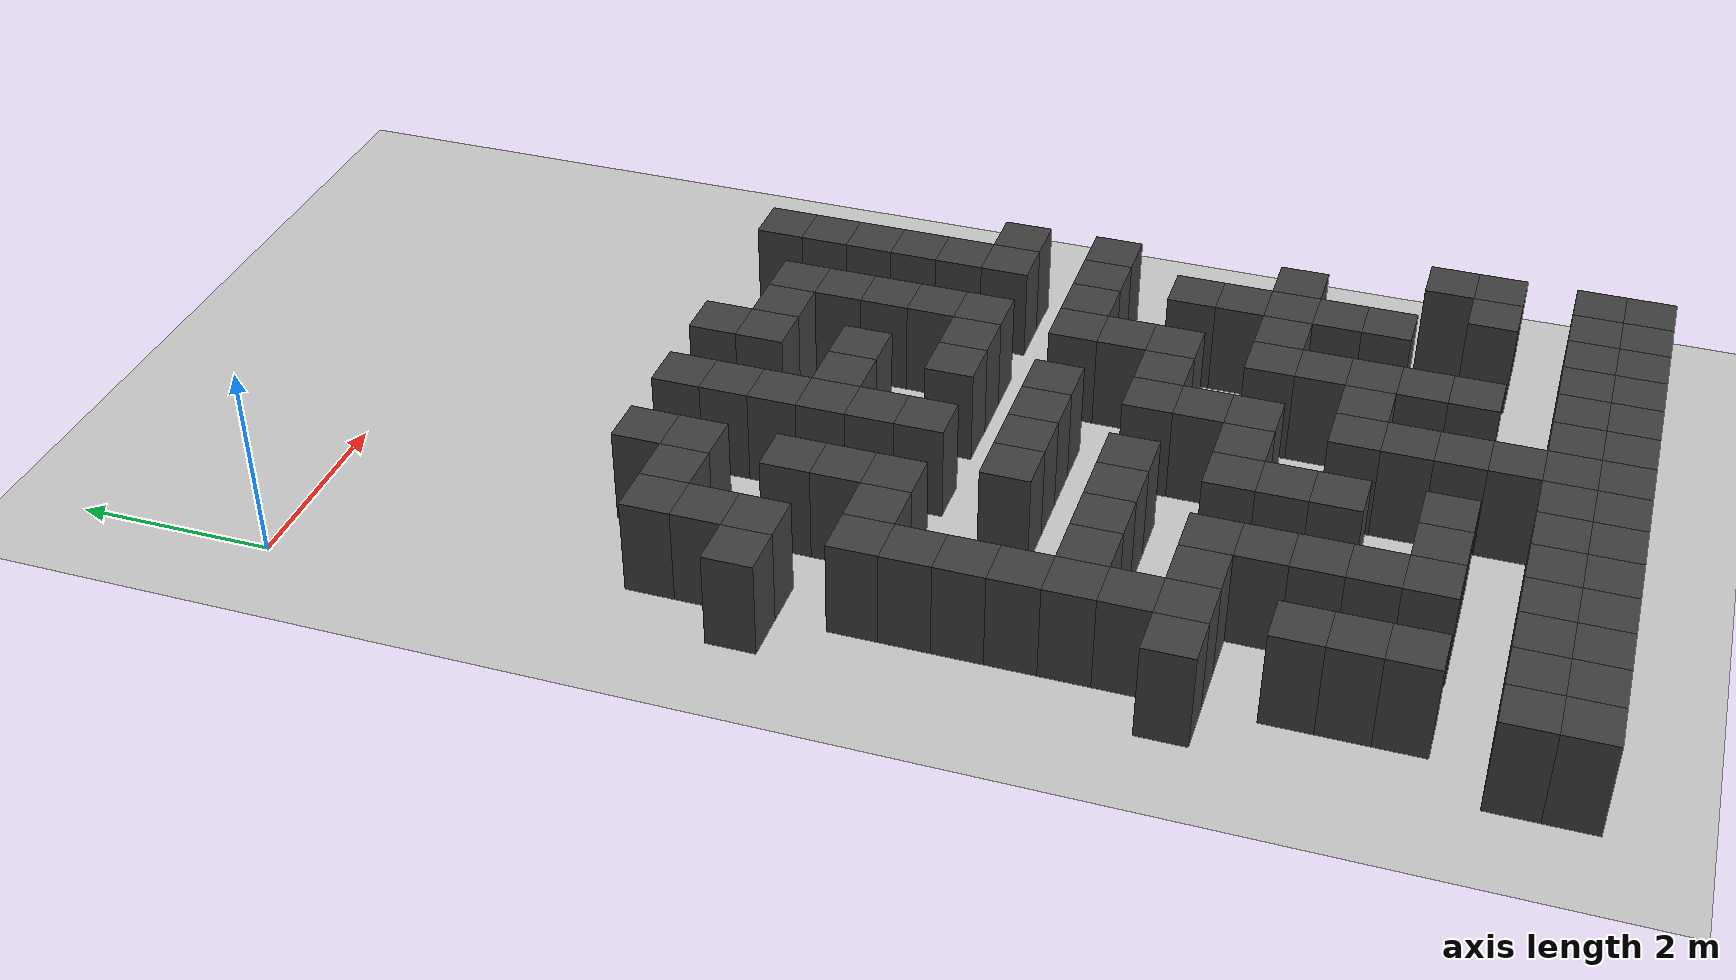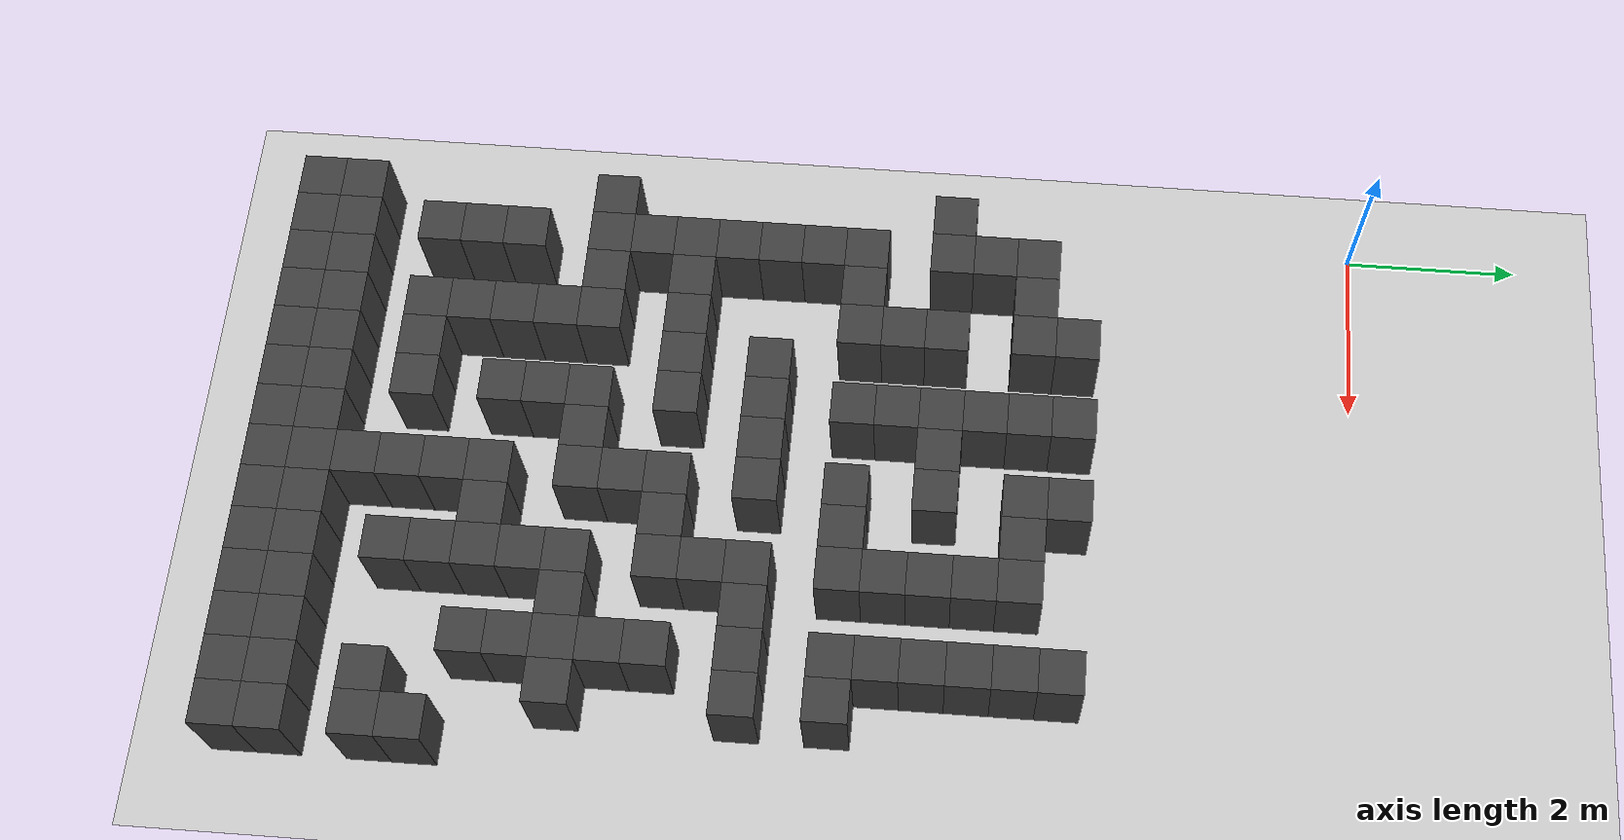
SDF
<sdf version="1.7">
 <world name="map_16783">
  <model name="ground_plane">
   <static>true</static>
   <link name="link">
    <collision name="collision">
     <geometry><plane><normal>0 0 1</normal><size>200 200</size></plane></geometry>
    </collision>
    <visual name="visual">
     <geometry><plane><normal>0 0 1</normal><size>200 200</size></plane></geometry>
     <material><ambient>0.8 0.8 0.8 1</ambient><diffuse>0.8 0.8 0.8 1</diffuse></material>
    </visual>
   </link>
  </model>
  <model name="maze_environment">
   <static>true</static>
   <link name="wall_761">
    <pose>1.750 -3.250 0.500 0 0 0</pose>
    <collision name="col"><geometry><box><size>0.5 0.5 1.0</size></box></geometry></collision>
    <visual name="vis">
     <geometry><box><size>0.5 0.5 1.0</size></box></geometry>
     <material><ambient>0.15 0.15 0.15 1</ambient><diffuse>0.25 0.25 0.25 1</diffuse></material>
    </visual>
   </link>
   <link name="wall_762">
    <pose>2.750 -3.250 0.500 0 0 0</pose>
    <collision name="col"><geometry><box><size>0.5 0.5 1.0</size></box></geometry></collision>
    <visual name="vis">
     <geometry><box><size>0.5 0.5 1.0</size></box></geometry>
     <material><ambient>0.15 0.15 0.15 1</ambient><diffuse>0.25 0.25 0.25 1</diffuse></material>
    </visual>
   </link>
   <link name="wall_763">
    <pose>3.750 -3.250 0.500 0 0 0</pose>
    <collision name="col"><geometry><box><size>0.5 0.5 1.0</size></box></geometry></collision>
    <visual name="vis">
     <geometry><box><size>0.5 0.5 1.0</size></box></geometry>
     <material><ambient>0.15 0.15 0.15 1</ambient><diffuse>0.25 0.25 0.25 1</diffuse></material>
    </visual>
   </link>
   <link name="wall_764">
    <pose>5.750 -3.250 0.500 0 0 0</pose>
    <collision name="col"><geometry><box><size>0.5 0.5 1.0</size></box></geometry></collision>
    <visual name="vis">
     <geometry><box><size>0.5 0.5 1.0</size></box></geometry>
     <material><ambient>0.15 0.15 0.15 1</ambient><diffuse>0.25 0.25 0.25 1</diffuse></material>
    </visual>
   </link>
   <link name="wall_786">
    <pose>0.750 -3.750 0.500 0 0 0</pose>
    <collision name="col"><geometry><box><size>0.5 0.5 1.0</size></box></geometry></collision>
    <visual name="vis">
     <geometry><box><size>0.5 0.5 1.0</size></box></geometry>
     <material><ambient>0.15 0.15 0.15 1</ambient><diffuse>0.25 0.25 0.25 1</diffuse></material>
    </visual>
   </link>
   <link name="wall_787">
    <pose>1.250 -3.750 0.500 0 0 0</pose>
    <collision name="col"><geometry><box><size>0.5 0.5 1.0</size></box></geometry></collision>
    <visual name="vis">
     <geometry><box><size>0.5 0.5 1.0</size></box></geometry>
     <material><ambient>0.15 0.15 0.15 1</ambient><diffuse>0.25 0.25 0.25 1</diffuse></material>
    </visual>
   </link>
   <link name="wall_788">
    <pose>1.750 -3.750 0.500 0 0 0</pose>
    <collision name="col"><geometry><box><size>0.5 0.5 1.0</size></box></geometry></collision>
    <visual name="vis">
     <geometry><box><size>0.5 0.5 1.0</size></box></geometry>
     <material><ambient>0.15 0.15 0.15 1</ambient><diffuse>0.25 0.25 0.25 1</diffuse></material>
    </visual>
   </link>
   <link name="wall_789">
    <pose>2.750 -3.750 0.500 0 0 0</pose>
    <collision name="col"><geometry><box><size>0.5 0.5 1.0</size></box></geometry></collision>
    <visual name="vis">
     <geometry><box><size>0.5 0.5 1.0</size></box></geometry>
     <material><ambient>0.15 0.15 0.15 1</ambient><diffuse>0.25 0.25 0.25 1</diffuse></material>
    </visual>
   </link>
   <link name="wall_790">
    <pose>3.750 -3.750 0.500 0 0 0</pose>
    <collision name="col"><geometry><box><size>0.5 0.5 1.0</size></box></geometry></collision>
    <visual name="vis">
     <geometry><box><size>0.5 0.5 1.0</size></box></geometry>
     <material><ambient>0.15 0.15 0.15 1</ambient><diffuse>0.25 0.25 0.25 1</diffuse></material>
    </visual>
   </link>
   <link name="wall_791">
    <pose>4.250 -3.750 0.500 0 0 0</pose>
    <collision name="col"><geometry><box><size>0.5 0.5 1.0</size></box></geometry></collision>
    <visual name="vis">
     <geometry><box><size>0.5 0.5 1.0</size></box></geometry>
     <material><ambient>0.15 0.15 0.15 1</ambient><diffuse>0.25 0.25 0.25 1</diffuse></material>
    </visual>
   </link>
   <link name="wall_792">
    <pose>4.750 -3.750 0.500 0 0 0</pose>
    <collision name="col"><geometry><box><size>0.5 0.5 1.0</size></box></geometry></collision>
    <visual name="vis">
     <geometry><box><size>0.5 0.5 1.0</size></box></geometry>
     <material><ambient>0.15 0.15 0.15 1</ambient><diffuse>0.25 0.25 0.25 1</diffuse></material>
    </visual>
   </link>
   <link name="wall_793">
    <pose>5.750 -3.750 0.500 0 0 0</pose>
    <collision name="col"><geometry><box><size>0.5 0.5 1.0</size></box></geometry></collision>
    <visual name="vis">
     <geometry><box><size>0.5 0.5 1.0</size></box></geometry>
     <material><ambient>0.15 0.15 0.15 1</ambient><diffuse>0.25 0.25 0.25 1</diffuse></material>
    </visual>
   </link>
   <link name="wall_808">
    <pose>0.750 -4.250 0.500 0 0 0</pose>
    <collision name="col"><geometry><box><size>0.5 0.5 1.0</size></box></geometry></collision>
    <visual name="vis">
     <geometry><box><size>0.5 0.5 1.0</size></box></geometry>
     <material><ambient>0.15 0.15 0.15 1</ambient><diffuse>0.25 0.25 0.25 1</diffuse></material>
    </visual>
   </link>
   <link name="wall_809">
    <pose>2.750 -4.250 0.500 0 0 0</pose>
    <collision name="col"><geometry><box><size>0.5 0.5 1.0</size></box></geometry></collision>
    <visual name="vis">
     <geometry><box><size>0.5 0.5 1.0</size></box></geometry>
     <material><ambient>0.15 0.15 0.15 1</ambient><diffuse>0.25 0.25 0.25 1</diffuse></material>
    </visual>
   </link>
   <link name="wall_810">
    <pose>4.750 -4.250 0.500 0 0 0</pose>
    <collision name="col"><geometry><box><size>0.5 0.5 1.0</size></box></geometry></collision>
    <visual name="vis">
     <geometry><box><size>0.5 0.5 1.0</size></box></geometry>
     <material><ambient>0.15 0.15 0.15 1</ambient><diffuse>0.25 0.25 0.25 1</diffuse></material>
    </visual>
   </link>
   <link name="wall_811">
    <pose>5.750 -4.250 0.500 0 0 0</pose>
    <collision name="col"><geometry><box><size>0.5 0.5 1.0</size></box></geometry></collision>
    <visual name="vis">
     <geometry><box><size>0.5 0.5 1.0</size></box></geometry>
     <material><ambient>0.15 0.15 0.15 1</ambient><diffuse>0.25 0.25 0.25 1</diffuse></material>
    </visual>
   </link>
   <link name="wall_834">
    <pose>0.250 -4.750 0.500 0 0 0</pose>
    <collision name="col"><geometry><box><size>0.5 0.5 1.0</size></box></geometry></collision>
    <visual name="vis">
     <geometry><box><size>0.5 0.5 1.0</size></box></geometry>
     <material><ambient>0.15 0.15 0.15 1</ambient><diffuse>0.25 0.25 0.25 1</diffuse></material>
    </visual>
   </link>
   <link name="wall_835">
    <pose>0.750 -4.750 0.500 0 0 0</pose>
    <collision name="col"><geometry><box><size>0.5 0.5 1.0</size></box></geometry></collision>
    <visual name="vis">
     <geometry><box><size>0.5 0.5 1.0</size></box></geometry>
     <material><ambient>0.15 0.15 0.15 1</ambient><diffuse>0.25 0.25 0.25 1</diffuse></material>
    </visual>
   </link>
   <link name="wall_836">
    <pose>1.750 -4.750 0.500 0 0 0</pose>
    <collision name="col"><geometry><box><size>0.5 0.5 1.0</size></box></geometry></collision>
    <visual name="vis">
     <geometry><box><size>0.5 0.5 1.0</size></box></geometry>
     <material><ambient>0.15 0.15 0.15 1</ambient><diffuse>0.25 0.25 0.25 1</diffuse></material>
    </visual>
   </link>
   <link name="wall_837">
    <pose>2.750 -4.750 0.500 0 0 0</pose>
    <collision name="col"><geometry><box><size>0.5 0.5 1.0</size></box></geometry></collision>
    <visual name="vis">
     <geometry><box><size>0.5 0.5 1.0</size></box></geometry>
     <material><ambient>0.15 0.15 0.15 1</ambient><diffuse>0.25 0.25 0.25 1</diffuse></material>
    </visual>
   </link>
   <link name="wall_838">
    <pose>3.250 -4.750 0.500 0 0 0</pose>
    <collision name="col"><geometry><box><size>0.5 0.5 1.0</size></box></geometry></collision>
    <visual name="vis">
     <geometry><box><size>0.5 0.5 1.0</size></box></geometry>
     <material><ambient>0.15 0.15 0.15 1</ambient><diffuse>0.25 0.25 0.25 1</diffuse></material>
    </visual>
   </link>
   <link name="wall_839">
    <pose>3.750 -4.750 0.500 0 0 0</pose>
    <collision name="col"><geometry><box><size>0.5 0.5 1.0</size></box></geometry></collision>
    <visual name="vis">
     <geometry><box><size>0.5 0.5 1.0</size></box></geometry>
     <material><ambient>0.15 0.15 0.15 1</ambient><diffuse>0.25 0.25 0.25 1</diffuse></material>
    </visual>
   </link>
   <link name="wall_840">
    <pose>4.750 -4.750 0.500 0 0 0</pose>
    <collision name="col"><geometry><box><size>0.5 0.5 1.0</size></box></geometry></collision>
    <visual name="vis">
     <geometry><box><size>0.5 0.5 1.0</size></box></geometry>
     <material><ambient>0.15 0.15 0.15 1</ambient><diffuse>0.25 0.25 0.25 1</diffuse></material>
    </visual>
   </link>
   <link name="wall_841">
    <pose>5.750 -4.750 0.500 0 0 0</pose>
    <collision name="col"><geometry><box><size>0.5 0.5 1.0</size></box></geometry></collision>
    <visual name="vis">
     <geometry><box><size>0.5 0.5 1.0</size></box></geometry>
     <material><ambient>0.15 0.15 0.15 1</ambient><diffuse>0.25 0.25 0.25 1</diffuse></material>
    </visual>
   </link>
   <link name="wall_857">
    <pose>1.750 -5.250 0.500 0 0 0</pose>
    <collision name="col"><geometry><box><size>0.5 0.5 1.0</size></box></geometry></collision>
    <visual name="vis">
     <geometry><box><size>0.5 0.5 1.0</size></box></geometry>
     <material><ambient>0.15 0.15 0.15 1</ambient><diffuse>0.25 0.25 0.25 1</diffuse></material>
    </visual>
   </link>
   <link name="wall_858">
    <pose>2.750 -5.250 0.500 0 0 0</pose>
    <collision name="col"><geometry><box><size>0.5 0.5 1.0</size></box></geometry></collision>
    <visual name="vis">
     <geometry><box><size>0.5 0.5 1.0</size></box></geometry>
     <material><ambient>0.15 0.15 0.15 1</ambient><diffuse>0.25 0.25 0.25 1</diffuse></material>
    </visual>
   </link>
   <link name="wall_859">
    <pose>4.750 -5.250 0.500 0 0 0</pose>
    <collision name="col"><geometry><box><size>0.5 0.5 1.0</size></box></geometry></collision>
    <visual name="vis">
     <geometry><box><size>0.5 0.5 1.0</size></box></geometry>
     <material><ambient>0.15 0.15 0.15 1</ambient><diffuse>0.25 0.25 0.25 1</diffuse></material>
    </visual>
   </link>
   <link name="wall_860">
    <pose>5.750 -5.250 0.500 0 0 0</pose>
    <collision name="col"><geometry><box><size>0.5 0.5 1.0</size></box></geometry></collision>
    <visual name="vis">
     <geometry><box><size>0.5 0.5 1.0</size></box></geometry>
     <material><ambient>0.15 0.15 0.15 1</ambient><diffuse>0.25 0.25 0.25 1</diffuse></material>
    </visual>
   </link>
   <link name="wall_880">
    <pose>0.750 -5.750 0.500 0 0 0</pose>
    <collision name="col"><geometry><box><size>0.5 0.5 1.0</size></box></geometry></collision>
    <visual name="vis">
     <geometry><box><size>0.5 0.5 1.0</size></box></geometry>
     <material><ambient>0.15 0.15 0.15 1</ambient><diffuse>0.25 0.25 0.25 1</diffuse></material>
    </visual>
   </link>
   <link name="wall_881">
    <pose>1.250 -5.750 0.500 0 0 0</pose>
    <collision name="col"><geometry><box><size>0.5 0.5 1.0</size></box></geometry></collision>
    <visual name="vis">
     <geometry><box><size>0.5 0.5 1.0</size></box></geometry>
     <material><ambient>0.15 0.15 0.15 1</ambient><diffuse>0.25 0.25 0.25 1</diffuse></material>
    </visual>
   </link>
   <link name="wall_882">
    <pose>1.750 -5.750 0.500 0 0 0</pose>
    <collision name="col"><geometry><box><size>0.5 0.5 1.0</size></box></geometry></collision>
    <visual name="vis">
     <geometry><box><size>0.5 0.5 1.0</size></box></geometry>
     <material><ambient>0.15 0.15 0.15 1</ambient><diffuse>0.25 0.25 0.25 1</diffuse></material>
    </visual>
   </link>
   <link name="wall_883">
    <pose>2.750 -5.750 0.500 0 0 0</pose>
    <collision name="col"><geometry><box><size>0.5 0.5 1.0</size></box></geometry></collision>
    <visual name="vis">
     <geometry><box><size>0.5 0.5 1.0</size></box></geometry>
     <material><ambient>0.15 0.15 0.15 1</ambient><diffuse>0.25 0.25 0.25 1</diffuse></material>
    </visual>
   </link>
   <link name="wall_884">
    <pose>3.750 -5.750 0.500 0 0 0</pose>
    <collision name="col"><geometry><box><size>0.5 0.5 1.0</size></box></geometry></collision>
    <visual name="vis">
     <geometry><box><size>0.5 0.5 1.0</size></box></geometry>
     <material><ambient>0.15 0.15 0.15 1</ambient><diffuse>0.25 0.25 0.25 1</diffuse></material>
    </visual>
   </link>
   <link name="wall_885">
    <pose>4.250 -5.750 0.500 0 0 0</pose>
    <collision name="col"><geometry><box><size>0.5 0.5 1.0</size></box></geometry></collision>
    <visual name="vis">
     <geometry><box><size>0.5 0.5 1.0</size></box></geometry>
     <material><ambient>0.15 0.15 0.15 1</ambient><diffuse>0.25 0.25 0.25 1</diffuse></material>
    </visual>
   </link>
   <link name="wall_886">
    <pose>4.750 -5.750 0.500 0 0 0</pose>
    <collision name="col"><geometry><box><size>0.5 0.5 1.0</size></box></geometry></collision>
    <visual name="vis">
     <geometry><box><size>0.5 0.5 1.0</size></box></geometry>
     <material><ambient>0.15 0.15 0.15 1</ambient><diffuse>0.25 0.25 0.25 1</diffuse></material>
    </visual>
   </link>
   <link name="wall_887">
    <pose>5.750 -5.750 0.500 0 0 0</pose>
    <collision name="col"><geometry><box><size>0.5 0.5 1.0</size></box></geometry></collision>
    <visual name="vis">
     <geometry><box><size>0.5 0.5 1.0</size></box></geometry>
     <material><ambient>0.15 0.15 0.15 1</ambient><diffuse>0.25 0.25 0.25 1</diffuse></material>
    </visual>
   </link>
   <link name="wall_888">
    <pose>6.250 -5.750 0.500 0 0 0</pose>
    <collision name="col"><geometry><box><size>0.5 0.5 1.0</size></box></geometry></collision>
    <visual name="vis">
     <geometry><box><size>0.5 0.5 1.0</size></box></geometry>
     <material><ambient>0.15 0.15 0.15 1</ambient><diffuse>0.25 0.25 0.25 1</diffuse></material>
    </visual>
   </link>
   <link name="wall_908">
    <pose>0.750 -6.250 0.500 0 0 0</pose>
    <collision name="col"><geometry><box><size>0.5 0.5 1.0</size></box></geometry></collision>
    <visual name="vis">
     <geometry><box><size>0.5 0.5 1.0</size></box></geometry>
     <material><ambient>0.15 0.15 0.15 1</ambient><diffuse>0.25 0.25 0.25 1</diffuse></material>
    </visual>
   </link>
   <link name="wall_927">
    <pose>0.750 -6.750 0.500 0 0 0</pose>
    <collision name="col"><geometry><box><size>0.5 0.5 1.0</size></box></geometry></collision>
    <visual name="vis">
     <geometry><box><size>0.5 0.5 1.0</size></box></geometry>
     <material><ambient>0.15 0.15 0.15 1</ambient><diffuse>0.25 0.25 0.25 1</diffuse></material>
    </visual>
   </link>
   <link name="wall_928">
    <pose>2.250 -6.750 0.500 0 0 0</pose>
    <collision name="col"><geometry><box><size>0.5 0.5 1.0</size></box></geometry></collision>
    <visual name="vis">
     <geometry><box><size>0.5 0.5 1.0</size></box></geometry>
     <material><ambient>0.15 0.15 0.15 1</ambient><diffuse>0.25 0.25 0.25 1</diffuse></material>
    </visual>
   </link>
   <link name="wall_929">
    <pose>2.750 -6.750 0.500 0 0 0</pose>
    <collision name="col"><geometry><box><size>0.5 0.5 1.0</size></box></geometry></collision>
    <visual name="vis">
     <geometry><box><size>0.5 0.5 1.0</size></box></geometry>
     <material><ambient>0.15 0.15 0.15 1</ambient><diffuse>0.25 0.25 0.25 1</diffuse></material>
    </visual>
   </link>
   <link name="wall_930">
    <pose>3.250 -6.750 0.500 0 0 0</pose>
    <collision name="col"><geometry><box><size>0.5 0.5 1.0</size></box></geometry></collision>
    <visual name="vis">
     <geometry><box><size>0.5 0.5 1.0</size></box></geometry>
     <material><ambient>0.15 0.15 0.15 1</ambient><diffuse>0.25 0.25 0.25 1</diffuse></material>
    </visual>
   </link>
   <link name="wall_931">
    <pose>3.750 -6.750 0.500 0 0 0</pose>
    <collision name="col"><geometry><box><size>0.5 0.5 1.0</size></box></geometry></collision>
    <visual name="vis">
     <geometry><box><size>0.5 0.5 1.0</size></box></geometry>
     <material><ambient>0.15 0.15 0.15 1</ambient><diffuse>0.25 0.25 0.25 1</diffuse></material>
    </visual>
   </link>
   <link name="wall_932">
    <pose>4.750 -6.750 0.500 0 0 0</pose>
    <collision name="col"><geometry><box><size>0.5 0.5 1.0</size></box></geometry></collision>
    <visual name="vis">
     <geometry><box><size>0.5 0.5 1.0</size></box></geometry>
     <material><ambient>0.15 0.15 0.15 1</ambient><diffuse>0.25 0.25 0.25 1</diffuse></material>
    </visual>
   </link>
   <link name="wall_933">
    <pose>5.250 -6.750 0.500 0 0 0</pose>
    <collision name="col"><geometry><box><size>0.5 0.5 1.0</size></box></geometry></collision>
    <visual name="vis">
     <geometry><box><size>0.5 0.5 1.0</size></box></geometry>
     <material><ambient>0.15 0.15 0.15 1</ambient><diffuse>0.25 0.25 0.25 1</diffuse></material>
    </visual>
   </link>
   <link name="wall_934">
    <pose>5.750 -6.750 0.500 0 0 0</pose>
    <collision name="col"><geometry><box><size>0.5 0.5 1.0</size></box></geometry></collision>
    <visual name="vis">
     <geometry><box><size>0.5 0.5 1.0</size></box></geometry>
     <material><ambient>0.15 0.15 0.15 1</ambient><diffuse>0.25 0.25 0.25 1</diffuse></material>
    </visual>
   </link>
   <link name="wall_935">
    <pose>6.250 -6.750 0.500 0 0 0</pose>
    <collision name="col"><geometry><box><size>0.5 0.5 1.0</size></box></geometry></collision>
    <visual name="vis">
     <geometry><box><size>0.5 0.5 1.0</size></box></geometry>
     <material><ambient>0.15 0.15 0.15 1</ambient><diffuse>0.25 0.25 0.25 1</diffuse></material>
    </visual>
   </link>
   <link name="wall_957">
    <pose>0.750 -7.250 0.500 0 0 0</pose>
    <collision name="col"><geometry><box><size>0.5 0.5 1.0</size></box></geometry></collision>
    <visual name="vis">
     <geometry><box><size>0.5 0.5 1.0</size></box></geometry>
     <material><ambient>0.15 0.15 0.15 1</ambient><diffuse>0.25 0.25 0.25 1</diffuse></material>
    </visual>
   </link>
   <link name="wall_958">
    <pose>4.750 -7.250 0.500 0 0 0</pose>
    <collision name="col"><geometry><box><size>0.5 0.5 1.0</size></box></geometry></collision>
    <visual name="vis">
     <geometry><box><size>0.5 0.5 1.0</size></box></geometry>
     <material><ambient>0.15 0.15 0.15 1</ambient><diffuse>0.25 0.25 0.25 1</diffuse></material>
    </visual>
   </link>
   <link name="wall_975">
    <pose>0.750 -7.750 0.500 0 0 0</pose>
    <collision name="col"><geometry><box><size>0.5 0.5 1.0</size></box></geometry></collision>
    <visual name="vis">
     <geometry><box><size>0.5 0.5 1.0</size></box></geometry>
     <material><ambient>0.15 0.15 0.15 1</ambient><diffuse>0.25 0.25 0.25 1</diffuse></material>
    </visual>
   </link>
   <link name="wall_976">
    <pose>1.250 -7.750 0.500 0 0 0</pose>
    <collision name="col"><geometry><box><size>0.5 0.5 1.0</size></box></geometry></collision>
    <visual name="vis">
     <geometry><box><size>0.5 0.5 1.0</size></box></geometry>
     <material><ambient>0.15 0.15 0.15 1</ambient><diffuse>0.25 0.25 0.25 1</diffuse></material>
    </visual>
   </link>
   <link name="wall_977">
    <pose>1.750 -7.750 0.500 0 0 0</pose>
    <collision name="col"><geometry><box><size>0.5 0.5 1.0</size></box></geometry></collision>
    <visual name="vis">
     <geometry><box><size>0.5 0.5 1.0</size></box></geometry>
     <material><ambient>0.15 0.15 0.15 1</ambient><diffuse>0.25 0.25 0.25 1</diffuse></material>
    </visual>
   </link>
   <link name="wall_978">
    <pose>2.250 -7.750 0.500 0 0 0</pose>
    <collision name="col"><geometry><box><size>0.5 0.5 1.0</size></box></geometry></collision>
    <visual name="vis">
     <geometry><box><size>0.5 0.5 1.0</size></box></geometry>
     <material><ambient>0.15 0.15 0.15 1</ambient><diffuse>0.25 0.25 0.25 1</diffuse></material>
    </visual>
   </link>
   <link name="wall_979">
    <pose>2.750 -7.750 0.500 0 0 0</pose>
    <collision name="col"><geometry><box><size>0.5 0.5 1.0</size></box></geometry></collision>
    <visual name="vis">
     <geometry><box><size>0.5 0.5 1.0</size></box></geometry>
     <material><ambient>0.15 0.15 0.15 1</ambient><diffuse>0.25 0.25 0.25 1</diffuse></material>
    </visual>
   </link>
   <link name="wall_980">
    <pose>3.750 -7.750 0.500 0 0 0</pose>
    <collision name="col"><geometry><box><size>0.5 0.5 1.0</size></box></geometry></collision>
    <visual name="vis">
     <geometry><box><size>0.5 0.5 1.0</size></box></geometry>
     <material><ambient>0.15 0.15 0.15 1</ambient><diffuse>0.25 0.25 0.25 1</diffuse></material>
    </visual>
   </link>
   <link name="wall_981">
    <pose>4.250 -7.750 0.500 0 0 0</pose>
    <collision name="col"><geometry><box><size>0.5 0.5 1.0</size></box></geometry></collision>
    <visual name="vis">
     <geometry><box><size>0.5 0.5 1.0</size></box></geometry>
     <material><ambient>0.15 0.15 0.15 1</ambient><diffuse>0.25 0.25 0.25 1</diffuse></material>
    </visual>
   </link>
   <link name="wall_982">
    <pose>4.750 -7.750 0.500 0 0 0</pose>
    <collision name="col"><geometry><box><size>0.5 0.5 1.0</size></box></geometry></collision>
    <visual name="vis">
     <geometry><box><size>0.5 0.5 1.0</size></box></geometry>
     <material><ambient>0.15 0.15 0.15 1</ambient><diffuse>0.25 0.25 0.25 1</diffuse></material>
    </visual>
   </link>
   <link name="wall_983">
    <pose>5.750 -7.750 0.500 0 0 0</pose>
    <collision name="col"><geometry><box><size>0.5 0.5 1.0</size></box></geometry></collision>
    <visual name="vis">
     <geometry><box><size>0.5 0.5 1.0</size></box></geometry>
     <material><ambient>0.15 0.15 0.15 1</ambient><diffuse>0.25 0.25 0.25 1</diffuse></material>
    </visual>
   </link>
   <link name="wall_1000">
    <pose>0.750 -8.250 0.500 0 0 0</pose>
    <collision name="col"><geometry><box><size>0.5 0.5 1.0</size></box></geometry></collision>
    <visual name="vis">
     <geometry><box><size>0.5 0.5 1.0</size></box></geometry>
     <material><ambient>0.15 0.15 0.15 1</ambient><diffuse>0.25 0.25 0.25 1</diffuse></material>
    </visual>
   </link>
   <link name="wall_1001">
    <pose>3.750 -8.250 0.500 0 0 0</pose>
    <collision name="col"><geometry><box><size>0.5 0.5 1.0</size></box></geometry></collision>
    <visual name="vis">
     <geometry><box><size>0.5 0.5 1.0</size></box></geometry>
     <material><ambient>0.15 0.15 0.15 1</ambient><diffuse>0.25 0.25 0.25 1</diffuse></material>
    </visual>
   </link>
   <link name="wall_1002">
    <pose>5.750 -8.250 0.500 0 0 0</pose>
    <collision name="col"><geometry><box><size>0.5 0.5 1.0</size></box></geometry></collision>
    <visual name="vis">
     <geometry><box><size>0.5 0.5 1.0</size></box></geometry>
     <material><ambient>0.15 0.15 0.15 1</ambient><diffuse>0.25 0.25 0.25 1</diffuse></material>
    </visual>
   </link>
   <link name="wall_1028">
    <pose>0.250 -8.750 0.500 0 0 0</pose>
    <collision name="col"><geometry><box><size>0.5 0.5 1.0</size></box></geometry></collision>
    <visual name="vis">
     <geometry><box><size>0.5 0.5 1.0</size></box></geometry>
     <material><ambient>0.15 0.15 0.15 1</ambient><diffuse>0.25 0.25 0.25 1</diffuse></material>
    </visual>
   </link>
   <link name="wall_1029">
    <pose>0.750 -8.750 0.500 0 0 0</pose>
    <collision name="col"><geometry><box><size>0.5 0.5 1.0</size></box></geometry></collision>
    <visual name="vis">
     <geometry><box><size>0.5 0.5 1.0</size></box></geometry>
     <material><ambient>0.15 0.15 0.15 1</ambient><diffuse>0.25 0.25 0.25 1</diffuse></material>
    </visual>
   </link>
   <link name="wall_1030">
    <pose>1.250 -8.750 0.500 0 0 0</pose>
    <collision name="col"><geometry><box><size>0.5 0.5 1.0</size></box></geometry></collision>
    <visual name="vis">
     <geometry><box><size>0.5 0.5 1.0</size></box></geometry>
     <material><ambient>0.15 0.15 0.15 1</ambient><diffuse>0.25 0.25 0.25 1</diffuse></material>
    </visual>
   </link>
   <link name="wall_1031">
    <pose>1.750 -8.750 0.500 0 0 0</pose>
    <collision name="col"><geometry><box><size>0.5 0.5 1.0</size></box></geometry></collision>
    <visual name="vis">
     <geometry><box><size>0.5 0.5 1.0</size></box></geometry>
     <material><ambient>0.15 0.15 0.15 1</ambient><diffuse>0.25 0.25 0.25 1</diffuse></material>
    </visual>
   </link>
   <link name="wall_1032">
    <pose>2.750 -8.750 0.500 0 0 0</pose>
    <collision name="col"><geometry><box><size>0.5 0.5 1.0</size></box></geometry></collision>
    <visual name="vis">
     <geometry><box><size>0.5 0.5 1.0</size></box></geometry>
     <material><ambient>0.15 0.15 0.15 1</ambient><diffuse>0.25 0.25 0.25 1</diffuse></material>
    </visual>
   </link>
   <link name="wall_1033">
    <pose>3.250 -8.750 0.500 0 0 0</pose>
    <collision name="col"><geometry><box><size>0.5 0.5 1.0</size></box></geometry></collision>
    <visual name="vis">
     <geometry><box><size>0.5 0.5 1.0</size></box></geometry>
     <material><ambient>0.15 0.15 0.15 1</ambient><diffuse>0.25 0.25 0.25 1</diffuse></material>
    </visual>
   </link>
   <link name="wall_1034">
    <pose>3.750 -8.750 0.500 0 0 0</pose>
    <collision name="col"><geometry><box><size>0.5 0.5 1.0</size></box></geometry></collision>
    <visual name="vis">
     <geometry><box><size>0.5 0.5 1.0</size></box></geometry>
     <material><ambient>0.15 0.15 0.15 1</ambient><diffuse>0.25 0.25 0.25 1</diffuse></material>
    </visual>
   </link>
   <link name="wall_1035">
    <pose>4.750 -8.750 0.500 0 0 0</pose>
    <collision name="col"><geometry><box><size>0.5 0.5 1.0</size></box></geometry></collision>
    <visual name="vis">
     <geometry><box><size>0.5 0.5 1.0</size></box></geometry>
     <material><ambient>0.15 0.15 0.15 1</ambient><diffuse>0.25 0.25 0.25 1</diffuse></material>
    </visual>
   </link>
   <link name="wall_1036">
    <pose>5.250 -8.750 0.500 0 0 0</pose>
    <collision name="col"><geometry><box><size>0.5 0.5 1.0</size></box></geometry></collision>
    <visual name="vis">
     <geometry><box><size>0.5 0.5 1.0</size></box></geometry>
     <material><ambient>0.15 0.15 0.15 1</ambient><diffuse>0.25 0.25 0.25 1</diffuse></material>
    </visual>
   </link>
   <link name="wall_1037">
    <pose>5.750 -8.750 0.500 0 0 0</pose>
    <collision name="col"><geometry><box><size>0.5 0.5 1.0</size></box></geometry></collision>
    <visual name="vis">
     <geometry><box><size>0.5 0.5 1.0</size></box></geometry>
     <material><ambient>0.15 0.15 0.15 1</ambient><diffuse>0.25 0.25 0.25 1</diffuse></material>
    </visual>
   </link>
   <link name="wall_1038">
    <pose>6.250 -8.750 0.500 0 0 0</pose>
    <collision name="col"><geometry><box><size>0.5 0.5 1.0</size></box></geometry></collision>
    <visual name="vis">
     <geometry><box><size>0.5 0.5 1.0</size></box></geometry>
     <material><ambient>0.15 0.15 0.15 1</ambient><diffuse>0.25 0.25 0.25 1</diffuse></material>
    </visual>
   </link>
   <link name="wall_1051">
    <pose>1.750 -9.250 0.500 0 0 0</pose>
    <collision name="col"><geometry><box><size>0.5 0.5 1.0</size></box></geometry></collision>
    <visual name="vis">
     <geometry><box><size>0.5 0.5 1.0</size></box></geometry>
     <material><ambient>0.15 0.15 0.15 1</ambient><diffuse>0.25 0.25 0.25 1</diffuse></material>
    </visual>
   </link>
   <link name="wall_1052">
    <pose>2.750 -9.250 0.500 0 0 0</pose>
    <collision name="col"><geometry><box><size>0.5 0.5 1.0</size></box></geometry></collision>
    <visual name="vis">
     <geometry><box><size>0.5 0.5 1.0</size></box></geometry>
     <material><ambient>0.15 0.15 0.15 1</ambient><diffuse>0.25 0.25 0.25 1</diffuse></material>
    </visual>
   </link>
   <link name="wall_1053">
    <pose>4.750 -9.250 0.500 0 0 0</pose>
    <collision name="col"><geometry><box><size>0.5 0.5 1.0</size></box></geometry></collision>
    <visual name="vis">
     <geometry><box><size>0.5 0.5 1.0</size></box></geometry>
     <material><ambient>0.15 0.15 0.15 1</ambient><diffuse>0.25 0.25 0.25 1</diffuse></material>
    </visual>
   </link>
   <link name="wall_1054">
    <pose>5.750 -9.250 0.500 0 0 0</pose>
    <collision name="col"><geometry><box><size>0.5 0.5 1.0</size></box></geometry></collision>
    <visual name="vis">
     <geometry><box><size>0.5 0.5 1.0</size></box></geometry>
     <material><ambient>0.15 0.15 0.15 1</ambient><diffuse>0.25 0.25 0.25 1</diffuse></material>
    </visual>
   </link>
   <link name="wall_1078">
    <pose>0.750 -9.750 0.500 0 0 0</pose>
    <collision name="col"><geometry><box><size>0.5 0.5 1.0</size></box></geometry></collision>
    <visual name="vis">
     <geometry><box><size>0.5 0.5 1.0</size></box></geometry>
     <material><ambient>0.15 0.15 0.15 1</ambient><diffuse>0.25 0.25 0.25 1</diffuse></material>
    </visual>
   </link>
   <link name="wall_1079">
    <pose>1.750 -9.750 0.500 0 0 0</pose>
    <collision name="col"><geometry><box><size>0.5 0.5 1.0</size></box></geometry></collision>
    <visual name="vis">
     <geometry><box><size>0.5 0.5 1.0</size></box></geometry>
     <material><ambient>0.15 0.15 0.15 1</ambient><diffuse>0.25 0.25 0.25 1</diffuse></material>
    </visual>
   </link>
   <link name="wall_1080">
    <pose>2.750 -9.750 0.500 0 0 0</pose>
    <collision name="col"><geometry><box><size>0.5 0.5 1.0</size></box></geometry></collision>
    <visual name="vis">
     <geometry><box><size>0.5 0.5 1.0</size></box></geometry>
     <material><ambient>0.15 0.15 0.15 1</ambient><diffuse>0.25 0.25 0.25 1</diffuse></material>
    </visual>
   </link>
   <link name="wall_1081">
    <pose>3.750 -9.750 0.500 0 0 0</pose>
    <collision name="col"><geometry><box><size>0.5 0.5 1.0</size></box></geometry></collision>
    <visual name="vis">
     <geometry><box><size>0.5 0.5 1.0</size></box></geometry>
     <material><ambient>0.15 0.15 0.15 1</ambient><diffuse>0.25 0.25 0.25 1</diffuse></material>
    </visual>
   </link>
   <link name="wall_1082">
    <pose>4.250 -9.750 0.500 0 0 0</pose>
    <collision name="col"><geometry><box><size>0.5 0.5 1.0</size></box></geometry></collision>
    <visual name="vis">
     <geometry><box><size>0.5 0.5 1.0</size></box></geometry>
     <material><ambient>0.15 0.15 0.15 1</ambient><diffuse>0.25 0.25 0.25 1</diffuse></material>
    </visual>
   </link>
   <link name="wall_1083">
    <pose>4.750 -9.750 0.500 0 0 0</pose>
    <collision name="col"><geometry><box><size>0.5 0.5 1.0</size></box></geometry></collision>
    <visual name="vis">
     <geometry><box><size>0.5 0.5 1.0</size></box></geometry>
     <material><ambient>0.15 0.15 0.15 1</ambient><diffuse>0.25 0.25 0.25 1</diffuse></material>
    </visual>
   </link>
   <link name="wall_1084">
    <pose>5.750 -9.750 0.500 0 0 0</pose>
    <collision name="col"><geometry><box><size>0.5 0.5 1.0</size></box></geometry></collision>
    <visual name="vis">
     <geometry><box><size>0.5 0.5 1.0</size></box></geometry>
     <material><ambient>0.15 0.15 0.15 1</ambient><diffuse>0.25 0.25 0.25 1</diffuse></material>
    </visual>
   </link>
   <link name="wall_1102">
    <pose>0.750 -10.250 0.500 0 0 0</pose>
    <collision name="col"><geometry><box><size>0.5 0.5 1.0</size></box></geometry></collision>
    <visual name="vis">
     <geometry><box><size>0.5 0.5 1.0</size></box></geometry>
     <material><ambient>0.15 0.15 0.15 1</ambient><diffuse>0.25 0.25 0.25 1</diffuse></material>
    </visual>
   </link>
   <link name="wall_1103">
    <pose>1.750 -10.250 0.500 0 0 0</pose>
    <collision name="col"><geometry><box><size>0.5 0.5 1.0</size></box></geometry></collision>
    <visual name="vis">
     <geometry><box><size>0.5 0.5 1.0</size></box></geometry>
     <material><ambient>0.15 0.15 0.15 1</ambient><diffuse>0.25 0.25 0.25 1</diffuse></material>
    </visual>
   </link>
   <link name="wall_1104">
    <pose>3.750 -10.250 0.500 0 0 0</pose>
    <collision name="col"><geometry><box><size>0.5 0.5 1.0</size></box></geometry></collision>
    <visual name="vis">
     <geometry><box><size>0.5 0.5 1.0</size></box></geometry>
     <material><ambient>0.15 0.15 0.15 1</ambient><diffuse>0.25 0.25 0.25 1</diffuse></material>
    </visual>
   </link>
   <link name="wall_1105">
    <pose>4.750 -10.250 0.500 0 0 0</pose>
    <collision name="col"><geometry><box><size>0.5 0.5 1.0</size></box></geometry></collision>
    <visual name="vis">
     <geometry><box><size>0.5 0.5 1.0</size></box></geometry>
     <material><ambient>0.15 0.15 0.15 1</ambient><diffuse>0.25 0.25 0.25 1</diffuse></material>
    </visual>
   </link>
   <link name="wall_1106">
    <pose>6.750 -10.250 0.500 0 0 0</pose>
    <collision name="col"><geometry><box><size>0.5 0.5 1.0</size></box></geometry></collision>
    <visual name="vis">
     <geometry><box><size>0.5 0.5 1.0</size></box></geometry>
     <material><ambient>0.15 0.15 0.15 1</ambient><diffuse>0.25 0.25 0.25 1</diffuse></material>
    </visual>
   </link>
   <link name="wall_1129">
    <pose>0.750 -10.750 0.500 0 0 0</pose>
    <collision name="col"><geometry><box><size>0.5 0.5 1.0</size></box></geometry></collision>
    <visual name="vis">
     <geometry><box><size>0.5 0.5 1.0</size></box></geometry>
     <material><ambient>0.15 0.15 0.15 1</ambient><diffuse>0.25 0.25 0.25 1</diffuse></material>
    </visual>
   </link>
   <link name="wall_1130">
    <pose>1.750 -10.750 0.500 0 0 0</pose>
    <collision name="col"><geometry><box><size>0.5 0.5 1.0</size></box></geometry></collision>
    <visual name="vis">
     <geometry><box><size>0.5 0.5 1.0</size></box></geometry>
     <material><ambient>0.15 0.15 0.15 1</ambient><diffuse>0.25 0.25 0.25 1</diffuse></material>
    </visual>
   </link>
   <link name="wall_1131">
    <pose>2.250 -10.750 0.500 0 0 0</pose>
    <collision name="col"><geometry><box><size>0.5 0.5 1.0</size></box></geometry></collision>
    <visual name="vis">
     <geometry><box><size>0.5 0.5 1.0</size></box></geometry>
     <material><ambient>0.15 0.15 0.15 1</ambient><diffuse>0.25 0.25 0.25 1</diffuse></material>
    </visual>
   </link>
   <link name="wall_1132">
    <pose>2.750 -10.750 0.500 0 0 0</pose>
    <collision name="col"><geometry><box><size>0.5 0.5 1.0</size></box></geometry></collision>
    <visual name="vis">
     <geometry><box><size>0.5 0.5 1.0</size></box></geometry>
     <material><ambient>0.15 0.15 0.15 1</ambient><diffuse>0.25 0.25 0.25 1</diffuse></material>
    </visual>
   </link>
   <link name="wall_1133">
    <pose>3.750 -10.750 0.500 0 0 0</pose>
    <collision name="col"><geometry><box><size>0.5 0.5 1.0</size></box></geometry></collision>
    <visual name="vis">
     <geometry><box><size>0.5 0.5 1.0</size></box></geometry>
     <material><ambient>0.15 0.15 0.15 1</ambient><diffuse>0.25 0.25 0.25 1</diffuse></material>
    </visual>
   </link>
   <link name="wall_1134">
    <pose>4.750 -10.750 0.500 0 0 0</pose>
    <collision name="col"><geometry><box><size>0.5 0.5 1.0</size></box></geometry></collision>
    <visual name="vis">
     <geometry><box><size>0.5 0.5 1.0</size></box></geometry>
     <material><ambient>0.15 0.15 0.15 1</ambient><diffuse>0.25 0.25 0.25 1</diffuse></material>
    </visual>
   </link>
   <link name="wall_1135">
    <pose>6.250 -10.750 0.500 0 0 0</pose>
    <collision name="col"><geometry><box><size>0.5 0.5 1.0</size></box></geometry></collision>
    <visual name="vis">
     <geometry><box><size>0.5 0.5 1.0</size></box></geometry>
     <material><ambient>0.15 0.15 0.15 1</ambient><diffuse>0.25 0.25 0.25 1</diffuse></material>
    </visual>
   </link>
   <link name="wall_1136">
    <pose>6.750 -10.750 0.500 0 0 0</pose>
    <collision name="col"><geometry><box><size>0.5 0.5 1.0</size></box></geometry></collision>
    <visual name="vis">
     <geometry><box><size>0.5 0.5 1.0</size></box></geometry>
     <material><ambient>0.15 0.15 0.15 1</ambient><diffuse>0.25 0.25 0.25 1</diffuse></material>
    </visual>
   </link>
   <link name="wall_1147">
    <pose>3.750 -11.250 0.500 0 0 0</pose>
    <collision name="col"><geometry><box><size>0.5 0.5 1.0</size></box></geometry></collision>
    <visual name="vis">
     <geometry><box><size>0.5 0.5 1.0</size></box></geometry>
     <material><ambient>0.15 0.15 0.15 1</ambient><diffuse>0.25 0.25 0.25 1</diffuse></material>
    </visual>
   </link>
   <link name="wall_1175">
    <pose>0.250 -11.750 0.500 0 0 0</pose>
    <collision name="col"><geometry><box><size>0.5 0.5 1.0</size></box></geometry></collision>
    <visual name="vis">
     <geometry><box><size>0.5 0.5 1.0</size></box></geometry>
     <material><ambient>0.15 0.15 0.15 1</ambient><diffuse>0.25 0.25 0.25 1</diffuse></material>
    </visual>
   </link>
   <link name="wall_1176">
    <pose>0.750 -11.750 0.500 0 0 0</pose>
    <collision name="col"><geometry><box><size>0.5 0.5 1.0</size></box></geometry></collision>
    <visual name="vis">
     <geometry><box><size>0.5 0.5 1.0</size></box></geometry>
     <material><ambient>0.15 0.15 0.15 1</ambient><diffuse>0.25 0.25 0.25 1</diffuse></material>
    </visual>
   </link>
   <link name="wall_1177">
    <pose>1.250 -11.750 0.500 0 0 0</pose>
    <collision name="col"><geometry><box><size>0.5 0.5 1.0</size></box></geometry></collision>
    <visual name="vis">
     <geometry><box><size>0.5 0.5 1.0</size></box></geometry>
     <material><ambient>0.15 0.15 0.15 1</ambient><diffuse>0.25 0.25 0.25 1</diffuse></material>
    </visual>
   </link>
   <link name="wall_1178">
    <pose>1.750 -11.750 0.500 0 0 0</pose>
    <collision name="col"><geometry><box><size>0.5 0.5 1.0</size></box></geometry></collision>
    <visual name="vis">
     <geometry><box><size>0.5 0.5 1.0</size></box></geometry>
     <material><ambient>0.15 0.15 0.15 1</ambient><diffuse>0.25 0.25 0.25 1</diffuse></material>
    </visual>
   </link>
   <link name="wall_1179">
    <pose>2.250 -11.750 0.500 0 0 0</pose>
    <collision name="col"><geometry><box><size>0.5 0.5 1.0</size></box></geometry></collision>
    <visual name="vis">
     <geometry><box><size>0.5 0.5 1.0</size></box></geometry>
     <material><ambient>0.15 0.15 0.15 1</ambient><diffuse>0.25 0.25 0.25 1</diffuse></material>
    </visual>
   </link>
   <link name="wall_1180">
    <pose>2.750 -11.750 0.500 0 0 0</pose>
    <collision name="col"><geometry><box><size>0.5 0.5 1.0</size></box></geometry></collision>
    <visual name="vis">
     <geometry><box><size>0.5 0.5 1.0</size></box></geometry>
     <material><ambient>0.15 0.15 0.15 1</ambient><diffuse>0.25 0.25 0.25 1</diffuse></material>
    </visual>
   </link>
   <link name="wall_1181">
    <pose>3.250 -11.750 0.500 0 0 0</pose>
    <collision name="col"><geometry><box><size>0.5 0.5 1.0</size></box></geometry></collision>
    <visual name="vis">
     <geometry><box><size>0.5 0.5 1.0</size></box></geometry>
     <material><ambient>0.15 0.15 0.15 1</ambient><diffuse>0.25 0.25 0.25 1</diffuse></material>
    </visual>
   </link>
   <link name="wall_1182">
    <pose>3.750 -11.750 0.500 0 0 0</pose>
    <collision name="col"><geometry><box><size>0.5 0.5 1.0</size></box></geometry></collision>
    <visual name="vis">
     <geometry><box><size>0.5 0.5 1.0</size></box></geometry>
     <material><ambient>0.15 0.15 0.15 1</ambient><diffuse>0.25 0.25 0.25 1</diffuse></material>
    </visual>
   </link>
   <link name="wall_1183">
    <pose>4.250 -11.750 0.500 0 0 0</pose>
    <collision name="col"><geometry><box><size>0.5 0.5 1.0</size></box></geometry></collision>
    <visual name="vis">
     <geometry><box><size>0.5 0.5 1.0</size></box></geometry>
     <material><ambient>0.15 0.15 0.15 1</ambient><diffuse>0.25 0.25 0.25 1</diffuse></material>
    </visual>
   </link>
   <link name="wall_1184">
    <pose>4.750 -11.750 0.500 0 0 0</pose>
    <collision name="col"><geometry><box><size>0.5 0.5 1.0</size></box></geometry></collision>
    <visual name="vis">
     <geometry><box><size>0.5 0.5 1.0</size></box></geometry>
     <material><ambient>0.15 0.15 0.15 1</ambient><diffuse>0.25 0.25 0.25 1</diffuse></material>
    </visual>
   </link>
   <link name="wall_1185">
    <pose>5.250 -11.750 0.500 0 0 0</pose>
    <collision name="col"><geometry><box><size>0.5 0.5 1.0</size></box></geometry></collision>
    <visual name="vis">
     <geometry><box><size>0.5 0.5 1.0</size></box></geometry>
     <material><ambient>0.15 0.15 0.15 1</ambient><diffuse>0.25 0.25 0.25 1</diffuse></material>
    </visual>
   </link>
   <link name="wall_1186">
    <pose>5.750 -11.750 0.500 0 0 0</pose>
    <collision name="col"><geometry><box><size>0.5 0.5 1.0</size></box></geometry></collision>
    <visual name="vis">
     <geometry><box><size>0.5 0.5 1.0</size></box></geometry>
     <material><ambient>0.15 0.15 0.15 1</ambient><diffuse>0.25 0.25 0.25 1</diffuse></material>
    </visual>
   </link>
   <link name="wall_1187">
    <pose>6.250 -11.750 0.500 0 0 0</pose>
    <collision name="col"><geometry><box><size>0.5 0.5 1.0</size></box></geometry></collision>
    <visual name="vis">
     <geometry><box><size>0.5 0.5 1.0</size></box></geometry>
     <material><ambient>0.15 0.15 0.15 1</ambient><diffuse>0.25 0.25 0.25 1</diffuse></material>
    </visual>
   </link>
   <link name="wall_1188">
    <pose>6.750 -11.750 0.500 0 0 0</pose>
    <collision name="col"><geometry><box><size>0.5 0.5 1.0</size></box></geometry></collision>
    <visual name="vis">
     <geometry><box><size>0.5 0.5 1.0</size></box></geometry>
     <material><ambient>0.15 0.15 0.15 1</ambient><diffuse>0.25 0.25 0.25 1</diffuse></material>
    </visual>
   </link>
   <link name="wall_1223">
    <pose>0.250 -12.250 0.500 0 0 0</pose>
    <collision name="col"><geometry><box><size>0.5 0.5 1.0</size></box></geometry></collision>
    <visual name="vis">
     <geometry><box><size>0.5 0.5 1.0</size></box></geometry>
     <material><ambient>0.15 0.15 0.15 1</ambient><diffuse>0.25 0.25 0.25 1</diffuse></material>
    </visual>
   </link>
   <link name="wall_1224">
    <pose>0.750 -12.250 0.500 0 0 0</pose>
    <collision name="col"><geometry><box><size>0.5 0.5 1.0</size></box></geometry></collision>
    <visual name="vis">
     <geometry><box><size>0.5 0.5 1.0</size></box></geometry>
     <material><ambient>0.15 0.15 0.15 1</ambient><diffuse>0.25 0.25 0.25 1</diffuse></material>
    </visual>
   </link>
   <link name="wall_1225">
    <pose>1.250 -12.250 0.500 0 0 0</pose>
    <collision name="col"><geometry><box><size>0.5 0.5 1.0</size></box></geometry></collision>
    <visual name="vis">
     <geometry><box><size>0.5 0.5 1.0</size></box></geometry>
     <material><ambient>0.15 0.15 0.15 1</ambient><diffuse>0.25 0.25 0.25 1</diffuse></material>
    </visual>
   </link>
   <link name="wall_1226">
    <pose>1.750 -12.250 0.500 0 0 0</pose>
    <collision name="col"><geometry><box><size>0.5 0.5 1.0</size></box></geometry></collision>
    <visual name="vis">
     <geometry><box><size>0.5 0.5 1.0</size></box></geometry>
     <material><ambient>0.15 0.15 0.15 1</ambient><diffuse>0.25 0.25 0.25 1</diffuse></material>
    </visual>
   </link>
   <link name="wall_1227">
    <pose>2.250 -12.250 0.500 0 0 0</pose>
    <collision name="col"><geometry><box><size>0.5 0.5 1.0</size></box></geometry></collision>
    <visual name="vis">
     <geometry><box><size>0.5 0.5 1.0</size></box></geometry>
     <material><ambient>0.15 0.15 0.15 1</ambient><diffuse>0.25 0.25 0.25 1</diffuse></material>
    </visual>
   </link>
   <link name="wall_1228">
    <pose>2.750 -12.250 0.500 0 0 0</pose>
    <collision name="col"><geometry><box><size>0.5 0.5 1.0</size></box></geometry></collision>
    <visual name="vis">
     <geometry><box><size>0.5 0.5 1.0</size></box></geometry>
     <material><ambient>0.15 0.15 0.15 1</ambient><diffuse>0.25 0.25 0.25 1</diffuse></material>
    </visual>
   </link>
   <link name="wall_1229">
    <pose>3.250 -12.250 0.500 0 0 0</pose>
    <collision name="col"><geometry><box><size>0.5 0.5 1.0</size></box></geometry></collision>
    <visual name="vis">
     <geometry><box><size>0.5 0.5 1.0</size></box></geometry>
     <material><ambient>0.15 0.15 0.15 1</ambient><diffuse>0.25 0.25 0.25 1</diffuse></material>
    </visual>
   </link>
   <link name="wall_1230">
    <pose>3.750 -12.250 0.500 0 0 0</pose>
    <collision name="col"><geometry><box><size>0.5 0.5 1.0</size></box></geometry></collision>
    <visual name="vis">
     <geometry><box><size>0.5 0.5 1.0</size></box></geometry>
     <material><ambient>0.15 0.15 0.15 1</ambient><diffuse>0.25 0.25 0.25 1</diffuse></material>
    </visual>
   </link>
   <link name="wall_1231">
    <pose>4.250 -12.250 0.500 0 0 0</pose>
    <collision name="col"><geometry><box><size>0.5 0.5 1.0</size></box></geometry></collision>
    <visual name="vis">
     <geometry><box><size>0.5 0.5 1.0</size></box></geometry>
     <material><ambient>0.15 0.15 0.15 1</ambient><diffuse>0.25 0.25 0.25 1</diffuse></material>
    </visual>
   </link>
   <link name="wall_1232">
    <pose>4.750 -12.250 0.500 0 0 0</pose>
    <collision name="col"><geometry><box><size>0.5 0.5 1.0</size></box></geometry></collision>
    <visual name="vis">
     <geometry><box><size>0.5 0.5 1.0</size></box></geometry>
     <material><ambient>0.15 0.15 0.15 1</ambient><diffuse>0.25 0.25 0.25 1</diffuse></material>
    </visual>
   </link>
   <link name="wall_1233">
    <pose>5.250 -12.250 0.500 0 0 0</pose>
    <collision name="col"><geometry><box><size>0.5 0.5 1.0</size></box></geometry></collision>
    <visual name="vis">
     <geometry><box><size>0.5 0.5 1.0</size></box></geometry>
     <material><ambient>0.15 0.15 0.15 1</ambient><diffuse>0.25 0.25 0.25 1</diffuse></material>
    </visual>
   </link>
   <link name="wall_1234">
    <pose>5.750 -12.250 0.500 0 0 0</pose>
    <collision name="col"><geometry><box><size>0.5 0.5 1.0</size></box></geometry></collision>
    <visual name="vis">
     <geometry><box><size>0.5 0.5 1.0</size></box></geometry>
     <material><ambient>0.15 0.15 0.15 1</ambient><diffuse>0.25 0.25 0.25 1</diffuse></material>
    </visual>
   </link>
   <link name="wall_1235">
    <pose>6.250 -12.250 0.500 0 0 0</pose>
    <collision name="col"><geometry><box><size>0.5 0.5 1.0</size></box></geometry></collision>
    <visual name="vis">
     <geometry><box><size>0.5 0.5 1.0</size></box></geometry>
     <material><ambient>0.15 0.15 0.15 1</ambient><diffuse>0.25 0.25 0.25 1</diffuse></material>
    </visual>
   </link>
   <link name="wall_1236">
    <pose>6.750 -12.250 0.500 0 0 0</pose>
    <collision name="col"><geometry><box><size>0.5 0.5 1.0</size></box></geometry></collision>
    <visual name="vis">
     <geometry><box><size>0.5 0.5 1.0</size></box></geometry>
     <material><ambient>0.15 0.15 0.15 1</ambient><diffuse>0.25 0.25 0.25 1</diffuse></material>
    </visual>
   </link>
  </model>
 </world>
</sdf>
